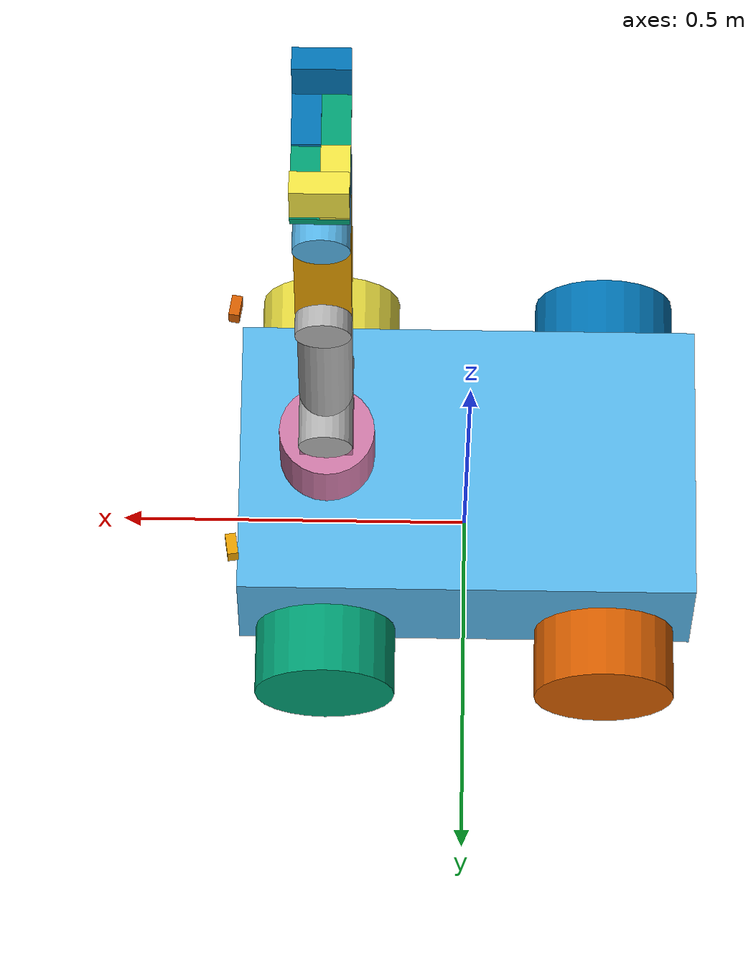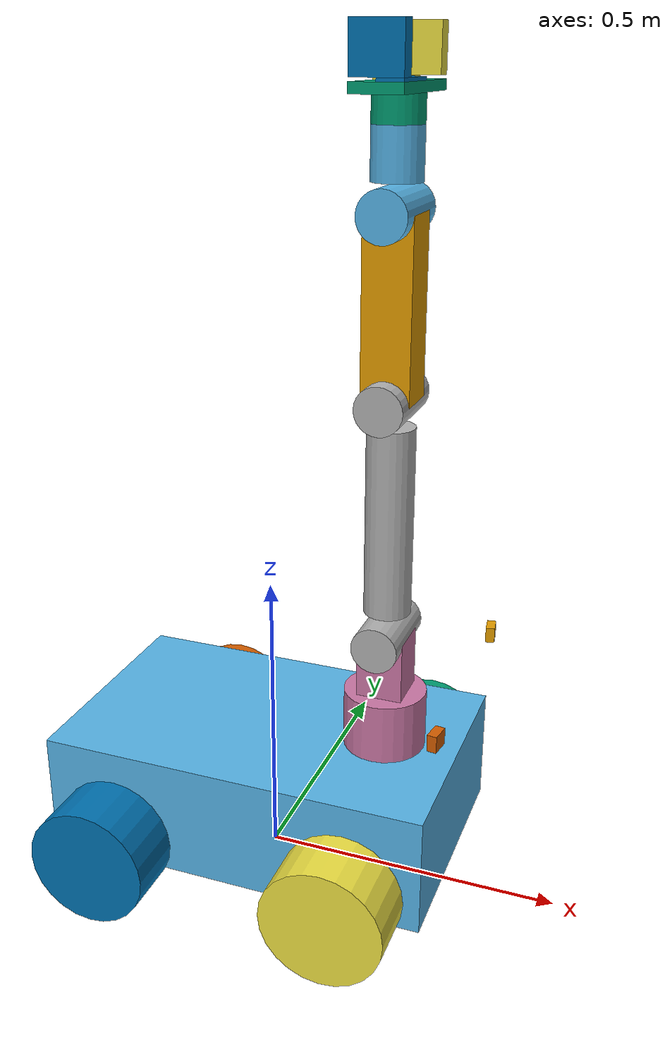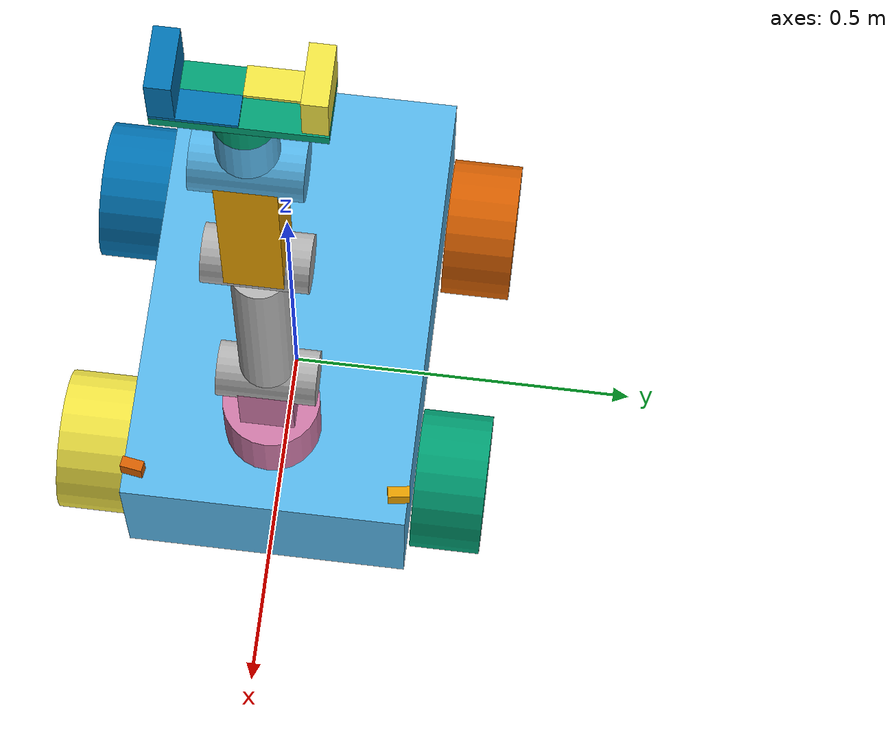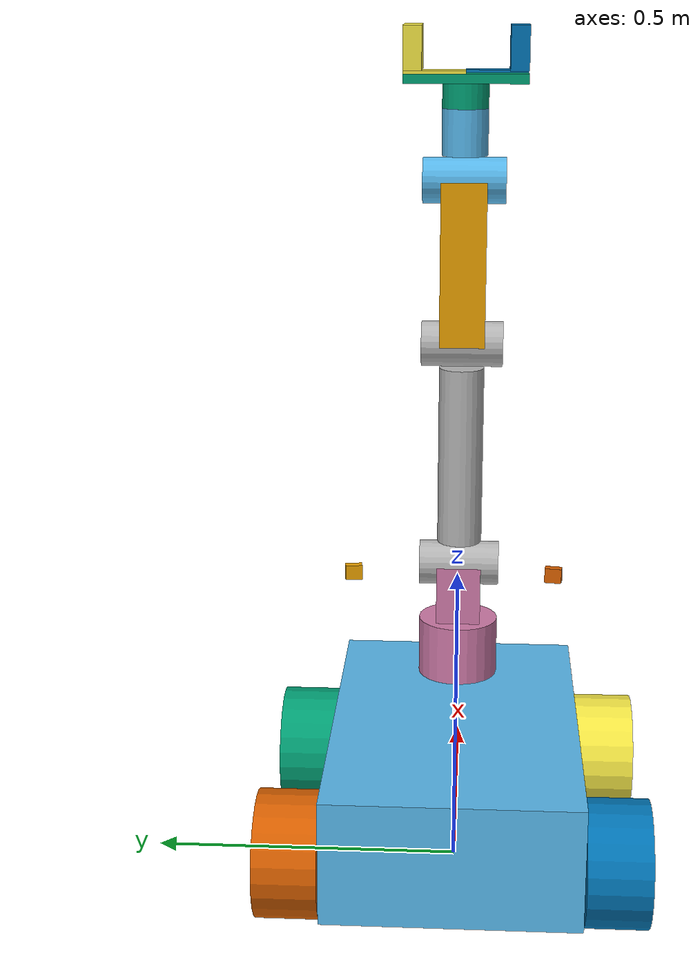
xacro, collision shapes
<?xml version="1.0" ?>

<robot name="mobile_manipulator_robot" xmlns:xacro="http://ros.org/wiki/xacro">
    <xacro:include filename="$(find custom_robot_sim)/urdf/common_macros.xacro" />
    <xacro:include filename="$(find custom_robot_sim)/urdf/robot_control.gazebo.xacro" />

    <xacro:property name="density_pla" value="600" />

    <!-- MOBILE PLATFORM -->

    <link name="base_footprint"/>

    <joint name="base_joint" type="fixed">
        <parent link="base_footprint"/>
        <child link="mobile_base_link" />
        <origin xyz="0 0 0.15" rpy="0 0 0"/>
    </joint>

    <!-- MOBILE BASE -->
    <link name="mobile_base_link">
        <visual>
            <origin xyz="0 0 0" rpy="0 0 0"/>
            <geometry>
                <mesh filename="$(find custom_robot_sim)/meshes/Boat_New_Base2.stl" />
            </geometry>
        </visual>
        <collision>
            <origin xyz="0 0 0" rpy="0 0 0"/>
            <geometry>
                <box size="0.650 0.400 0.200"/>
            </geometry>
        </collision>
        <xacro:inertial_box length="0.650" width="0.400" height="0.200" density="${density_pla}">
            <origin xyz="0 0 0" rpy="0 0 0"/>
        </xacro:inertial_box>
    </link>

    <!-- FRONT LEFT WHEEL -->
    <joint type="continuous" name="front_left_wheel_joint">
        <origin xyz="0.200 0.255 -0.050" rpy="-${pi/2} 0 0"/>
        <child link="front_left_wheel_link"/>
        <parent link="mobile_base_link"/>
        <axis xyz="0 0 1" rpy="0 0 0"/>
        <limit effort="1000" velocity="1000"/>
        <dynamics damping="0.7" friction="1.0"/>
    </joint>

    <link name="front_left_wheel_link">
        <visual>
            <origin xyz="0 0 0" rpy="0 0 0"/>
            <geometry>
                <mesh filename="$(find custom_robot_sim)/meshes/wheel_mesh.stl" />
            </geometry>
        </visual>
        <collision>
            <origin xyz="0 0 0" rpy="0 0 0"/>
            <geometry>
                <cylinder length="0.1" radius="0.1" />
            </geometry>
        </collision>
        <xacro:inertial_cylinder radius="0.1" length="0.1" density="${density_pla}">
            <origin xyz="0 0 0" rpy="0 0 0"/>
        </xacro:inertial_cylinder>
    </link>

    <!-- FRONT RIGHT WHEEL -->
    <joint type="continuous" name="front_right_wheel_joint">
        <origin xyz="0.200 -0.255 -0.050" rpy="-${pi/2} 0 0"/>
        <child link="front_right_wheel_link"/>
        <parent link="mobile_base_link"/>
        <axis xyz="0 0 1" rpy="0 0 0"/>
        <limit effort="1000" velocity="1000"/>
        <dynamics damping="0.7" friction="1.0"/>
    </joint>

    <link name="front_right_wheel_link">
        <visual>
            <origin xyz="0 0 0" rpy="0 0 0"/>
            <geometry>
                <mesh filename="$(find custom_robot_sim)/meshes/wheel_mesh.stl" />
            </geometry>
        </visual>
        <collision>
            <origin xyz="0 0 0" rpy="0 0 0"/>
            <geometry>
                <cylinder length="0.1" radius="0.1" />
            </geometry>
        </collision>
        <xacro:inertial_cylinder radius="0.1" length="0.1" density="${density_pla}">
            <origin xyz="0 0 0" rpy="0 0 0"/>
        </xacro:inertial_cylinder>
    </link>

    <!-- BACK RIGHT WHEEL -->
    <joint type="continuous" name="back_right_wheel_joint">
        <origin xyz="-0.200 -0.255 -0.050" rpy="-${pi/2} 0 0"/>
        <child link="back_right_wheel_link"/>
        <parent link="mobile_base_link"/>
        <axis xyz="0 0 1" rpy="0 0 0"/>
        <limit effort="1000" velocity="1000"/>
        <dynamics damping="0.7" friction="1.0"/>
    </joint>

    <link name="back_right_wheel_link">
        <visual>
            <origin xyz="0 0 0" rpy="0 0 0"/>
            <geometry>
                <mesh filename="$(find custom_robot_sim)/meshes/wheel_mesh.stl" />
            </geometry>
        </visual>
        <collision>
            <origin xyz="0 0 0" rpy="0 0 0"/>
            <geometry>
                <cylinder length="0.1" radius="0.1" />
            </geometry>
        </collision>
        <xacro:inertial_cylinder radius="0.1" length="0.1" density="${density_pla}">
            <origin xyz="0 0 0" rpy="0 0 0"/>
        </xacro:inertial_cylinder>
    </link>

    <!-- BACK LEFT WHEEL -->
    <joint type="continuous" name="back_left_wheel_joint">
        <origin xyz="-0.200 0.255 -0.050" rpy="-${pi/2} 0 0"/>
        <child link="back_left_wheel_link"/>
        <parent link="mobile_base_link"/>
        <axis xyz="0 0 1" rpy="0 0 0"/>
        <limit effort="1000" velocity="1000"/>
        <dynamics damping="0.7" friction="1.0"/>
    </joint>

    <link name="back_left_wheel_link">
        <visual>
            <origin xyz="0 0 0" rpy="0 0 0"/>
            <geometry>
                <mesh filename="$(find custom_robot_sim)/meshes/wheel_mesh.stl" />
            </geometry>
        </visual>
        <collision>
            <origin xyz="0 0 0" rpy="0 0 0"/>
            <geometry>
                <cylinder length="0.1" radius="0.1" />
            </geometry>
        </collision>
        <xacro:inertial_cylinder radius="0.1" length="0.1" density="${density_pla}">
            <origin xyz="0 0 0" rpy="0 0 0"/>
        </xacro:inertial_cylinder>
    </link>

    <!-- ROBOTIC ARM -->

    <!-- ARM BASE -->
    <joint type="revolute" name="arm_base_joint">
        <origin xyz="0.2 0 0.1" rpy="0 0 0"/>
        <child link="arm_base_link"/>
        <parent link="mobile_base_link"/>
        <axis xyz="0 0 1" rpy="0 0 0"/>
        <limit effort="100" velocity="100" lower="-${pi}" upper="${pi}"/>
        <dynamics damping="0.7" friction="1.0"/>
    </joint>

    <link name="arm_base_link">
        <visual>
            <origin xyz="0 0 0" rpy="0 0 0"/>
            <geometry>
                <mesh filename="$(find custom_robot_sim)/meshes/arm_base_mesh.stl" />
            </geometry>
        </visual>
        <collision>
            <origin xyz="0 0 0.05" rpy="0 0 0"/>
            <geometry>
                <cylinder length="0.1" radius="${0.135/2}" />
            </geometry>
        </collision>
        <collision>
            <origin xyz="0 0 0.15" rpy="0 0 0"/>
            <geometry>
                <box size="0.075 0.075 0.1"/>
            </geometry>
        </collision>
        <xacro:inertial_cylinder radius="${0.135/2}" length="0.2" density="${density_pla}">
            <origin xyz="0 0 0.1" rpy="0 0 0"/>
        </xacro:inertial_cylinder>
    </link>

    <!-- LINK 1 -->
    <joint type="revolute" name="link_1_joint">
        <origin xyz="0 0 0.2" rpy="-${pi/2} 0 0"/>
        <child link="link_1_link"/>
        <parent link="arm_base_link"/>
        <axis xyz="0 0 1" rpy="0 0 0"/>
        <limit effort="100" velocity="100" lower="-${pi/2}" upper="${pi/2}"/>
        <dynamics damping="0.7" friction="1.0"/>
    </joint>

    <link name="link_1_link">
        <visual>
            <origin xyz="0 -${0.385/2} 0" rpy="${pi/2} 0 0"/>
            <geometry>
                <mesh filename="$(find custom_robot_sim)/meshes/link_1_mesh.stl" />
            </geometry>
        </visual>
        <collision>
            <origin xyz="0 0 0" rpy="0 0 0"/>
            <geometry>
                <cylinder length="0.135" radius="${0.075/2}" />
            </geometry>
        </collision>
        <collision>
            <origin xyz="0 -${0.385/2} 0" rpy="${pi/2} 0 0"/>
            <geometry>
                <cylinder length="0.305" radius="${0.075/2}" />
            </geometry>
        </collision>
        <collision>
            <origin xyz="0 -${0.385} 0" rpy="0 0 0"/>
            <geometry>
                <cylinder length="0.135" radius="${0.075/2}" />
            </geometry>
        </collision>
        <xacro:inertial_cylinder radius="${0.075/2}" length="0.305" density="${density_pla}">
            <origin xyz="0 -${0.385/2} 0.0" rpy="${pi/2} 0 0"/>
        </xacro:inertial_cylinder>
    </link>

    <!-- LINK 2 -->
    <joint type="revolute" name="link_2_joint">
        <origin xyz="0 -0.385 0" rpy="0 0 0"/>
        <child link="link_2_link"/>
        <parent link="link_1_link"/>
        <axis xyz="0 0 1" rpy="0 0 0"/>
        <limit effort="100" velocity="100" lower="-${pi/2}" upper="${pi/2}"/>
        <dynamics damping="0.7" friction="1.0"/>
    </joint>

    <link name="link_2_link">
        <visual>
            <origin xyz="0 -${0.270/2} 0" rpy="${pi/2} 0 0"/>
            <geometry>
                <mesh filename="$(find custom_robot_sim)/meshes/link_2_mesh.stl" />
            </geometry>
        </visual>
        <collision>
            <origin xyz="0 -${0.270/2} 0" rpy="${pi/2} 0 0"/>
            <geometry>
                <box size="0.075 0.075 0.27"/>
            </geometry>
        </collision>
        <xacro:inertial_box length="0.075" width="0.075" height="0.27" density="${density_pla}">
            <origin xyz="0 -${0.270/2} 0" rpy="${pi/2} 0 0"/>
        </xacro:inertial_box>
    </link>

    <!-- LINK 3 -->
    <joint type="revolute" name="link_3_joint">
        <origin xyz="0 -0.27 0" rpy="0 0 0"/>
        <child link="link_3_link"/>
        <parent link="link_2_link"/>
        <axis xyz="0 0 1" rpy="0 0 0"/>
        <limit effort="100" velocity="100" lower="-${pi/2}" upper="${pi/2}"/>
        <dynamics damping="0.7" friction="1.0"/>
    </joint>

    <link name="link_3_link">
        <visual>
            <origin xyz="0 -0.115 0" rpy="${pi/2} 0 0"/>
            <geometry>
                <mesh filename="$(find custom_robot_sim)/meshes/link_3_mesh.stl" />
            </geometry>
        </visual>
        <collision>
            <origin xyz="0 0 0" rpy="0 0 0"/>
            <geometry>
                <cylinder length="0.135" radius="${0.075/2}" />
            </geometry>
        </collision>
        <collision>
            <origin xyz="0 -${0.115-0.075/2} 0" rpy="${pi/2} 0 0"/>
            <geometry>
                <cylinder length="0.075" radius="${0.075/2}" />
            </geometry>
        </collision>
        <xacro:inertial_cylinder radius="${0.075/2}" length="0.115" density="${density_pla}">
            <origin xyz="0 -${0.115/2} 0" rpy="${pi/2} 0 0"/>
        </xacro:inertial_cylinder>
    </link>

    <!-- GRIPPER BASE -->
    <joint type="revolute" name="gripper_base_joint">
        <origin xyz="0.0 -0.115 0.0" rpy="${pi/2} ${pi/2} 0"/>
        <child link="gripper_base_link"/>
        <parent link="link_3_link"/>
        <axis xyz="0 0 1" rpy="0 0 0"/>
        <limit effort="100" velocity="100" lower="-${pi}" upper="${pi}"/>
        <dynamics damping="0.7" friction="1.0"/>
    </joint>

    <link name="gripper_base_link">
        <visual>
            <origin xyz="0 0 0" rpy="0 0 0"/>
            <geometry>
                <mesh filename="$(find custom_robot_sim)/meshes/gripper_base_mesh.stl" scale="0.001 0.001 0.001"/>
            </geometry>
        </visual>
        <collision>
            <origin xyz="0 0.0 0.02" rpy="0 0 0"/>
            <geometry>
                <cylinder length="0.04" radius="${0.075/2}" />
            </geometry>
        </collision>
        <collision>
            <origin xyz="0 0.0 0.0475" rpy="0 0 0"/>
            <geometry>
                <box size="0.2 0.075 0.015"/>
            </geometry>
        </collision>
        <xacro:inertial_cylinder radius="${0.075/2}" length="0.04" density="${density_pla}">
            <origin xyz="0 0 0.02" rpy="0 0 0"/>
        </xacro:inertial_cylinder>
    </link>

    <!-- GRIPPER FINGER LEFT -->
    <joint type="prismatic" name="gripper_finger_left_joint">
        <origin xyz="-0.05 0.0 0.055" rpy="0 ${pi/2} 0"/>
        <child link="gripper_finger_left_link"/>
        <parent link="gripper_base_link"/>
        <axis xyz="0 0 1" rpy="0 0 0"/>
        <limit effort="10" velocity="1000" lower="0.0" upper="0.07"/>
        <dynamics damping="0.7" friction="1.0"/>
    </joint>

    <link name="gripper_finger_left_link">
        <visual>
            <origin xyz="0 0 0" rpy="0 -${pi/2} 0"/>
            <geometry>
                <mesh filename="$(find custom_robot_sim)/meshes/gripper_finger_mesh.stl" scale="0.001 0.001 0.001"/>
            </geometry>
        </visual>
        <collision>
            <origin xyz="-${0.07/2+0.005} 0 -0.035" rpy="0 0 0"/>
            <geometry>
                <box size="0.07 0.075 0.03" />
            </geometry>
        </collision>
        <collision>
            <origin xyz="-${0.005/2} -${0.0375/2} 0.0" rpy="0 0 0"/>
            <geometry>
                <box size="0.005 0.0375 0.1" />
            </geometry>
        </collision>
        <xacro:inertial_box length="0.07" width="0.075" height="0.03" density="${density_pla}">
            <origin xyz="-${0.07/2+0.005} 0 -0.035" rpy="0 0 0"/>
        </xacro:inertial_box>
    </link>

    <!-- GRIPPER FINGER RIGHT -->
    <joint type="prismatic" name="gripper_finger_right_joint">
        <mimic joint="gripper_finger_left.joint"/>
        <origin xyz="0.05 0.0 0.055" rpy="0 ${pi/2} ${pi}"/>
        <child link="gripper_finger_right_link"/>
        <parent link="gripper_base_link"/>
        <axis xyz="0 0 1" rpy="0 0 0"/>
        <limit effort="10" velocity="1000" lower="0.0" upper="0.07"/>
        <dynamics damping="0.7" friction="1.0"/>
    </joint>

    <link name="gripper_finger_right_link">
        <visual>
            <origin xyz="0 0 0" rpy="0 -${pi/2} 0"/>
            <geometry>
                <mesh filename="$(find custom_robot_sim)/meshes/gripper_finger_mesh.stl" scale="0.001 0.001 0.001"/>
            </geometry>
        </visual>
        <collision>
            <origin xyz="-${0.07/2+0.005} 0 -0.035" rpy="0 0 0"/>
            <geometry>
                <box size="0.07 0.075 0.03" />
            </geometry>
        </collision>
        <collision>
            <origin xyz="-${0.005/2} -${0.0375/2} 0.0" rpy="0 0 0"/>
            <geometry>
                <box size="0.005 0.0375 0.1" />
            </geometry>
        </collision>
        <xacro:inertial_box length="0.07" width="0.075" height="0.03" density="${density_pla}">
            <origin xyz="-${0.07/2+0.005} 0 -0.035" rpy="0 0 0"/>
        </xacro:inertial_box>
    </link>

    <!-- CAMERA RIGHT -->
    <joint name="camera_joint" type="fixed">
        <origin xyz="${0.650/2} -0.180 0.220" rpy="0 0 ${-pi/20}"/>
        <parent link="mobile_base_link"/>
        <child link="camera_link"/>
    </joint>

    <link name="camera_link">
        <collision>
        <origin xyz="0.005 0.011 0.013" rpy="0 0 0"/>
        <geometry>
            <box size="0.015 0.030 0.027"/>
        </geometry>
        </collision>
    </link>

    <joint name="camera_rgb_joint" type="fixed">
        <origin xyz="0.003 0.011 0.009" rpy="0 0 0"/>
        <parent link="camera_link"/>
        <child link="camera_rgb_frame"/>
    </joint>
    <link name="camera_rgb_frame"/>

    <joint name="camera_rgb_optical_joint" type="fixed">
        <origin xyz="0 0 0" rpy="-1.57 0 -1.57"/>
        <parent link="camera_rgb_frame"/>
        <child link="camera_rgb_optical_frame"/>
    </joint>
    <link name="camera_rgb_optical_frame"/>

    <!--CAMERA RIGHT-->

   <!-- CAMERA LEFT-->
    <joint name="camera1_joint" type="fixed">
        <origin xyz="${0.650/2} 0.180 0.220" rpy="0 0 ${pi/21}"/>
        <parent link="mobile_base_link"/>
        <child link="camera1_link"/>
    </joint>

    <link name="camera1_link">
        <collision>
        <origin xyz="0.005 0.011 0.013" rpy="0 0 0"/>
        <geometry>
            <box size="0.015 0.030 0.027"/>
        </geometry>
        </collision>
    </link>

    <joint name="camera_rgb_joint1" type="fixed">
        <origin xyz="0.003 0.011 0.009" rpy="0 0 0"/>
        <parent link="camera1_link"/>
        <child link="camera_rgb_frame1"/>
    </joint>
    <link name="camera_rgb_frame1"/>

    <joint name="camera_rgb_optical_joint1" type="fixed">
        <origin xyz="0 0 0" rpy="-1.57 0 -1.57"/>
        <parent link="camera_rgb_frame1"/>
        <child link="camera_rgb_optical_frame1"/>
    </joint>
    <link name="camera_rgb_optical_frame1"/>

    <!--CAMERA LEFT-->

</robot>
